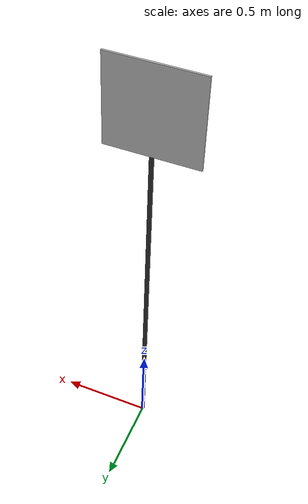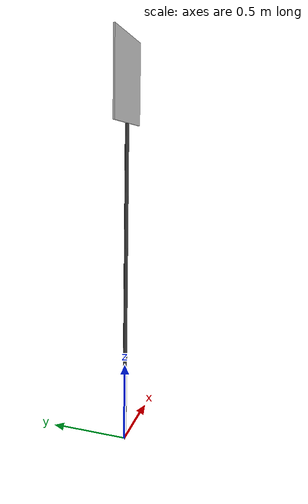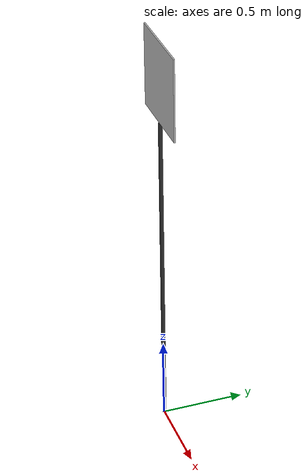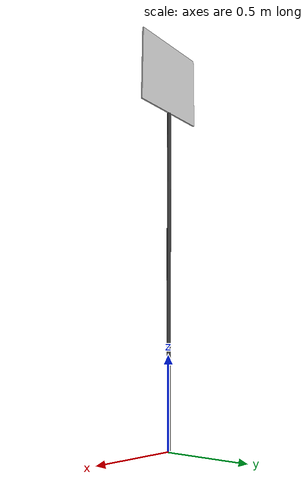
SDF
<?xml version="1.0" ?>
<sdf version="1.6">
  <model name="durak">
    <static>true</static>
    <link name="link">
      <visual name="visual">
        <geometry>
          <mesh>
            <uri>model://durak/meshes/kare_tabela.dae</uri>
          </mesh>
        </geometry>
      </visual>
      <collision name="collision">
        <geometry>
          <mesh>
            <uri>model://durak/meshes/kare_tabela.dae</uri>
          </mesh>
        </geometry>
      </collision>
    </link>
  </model>
</sdf>
